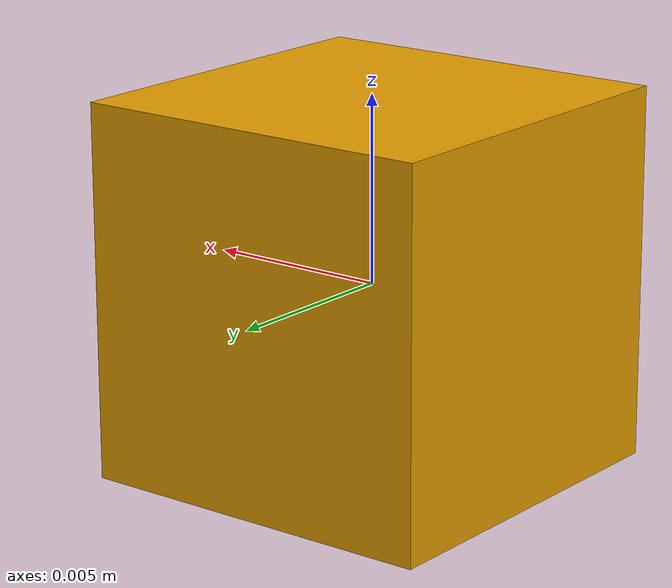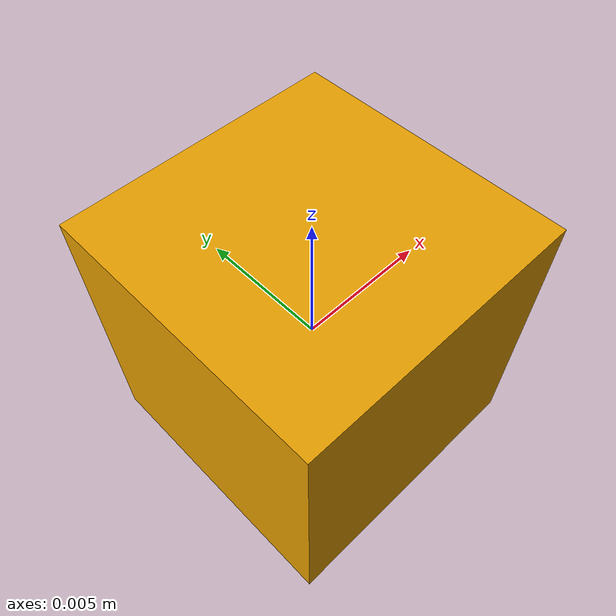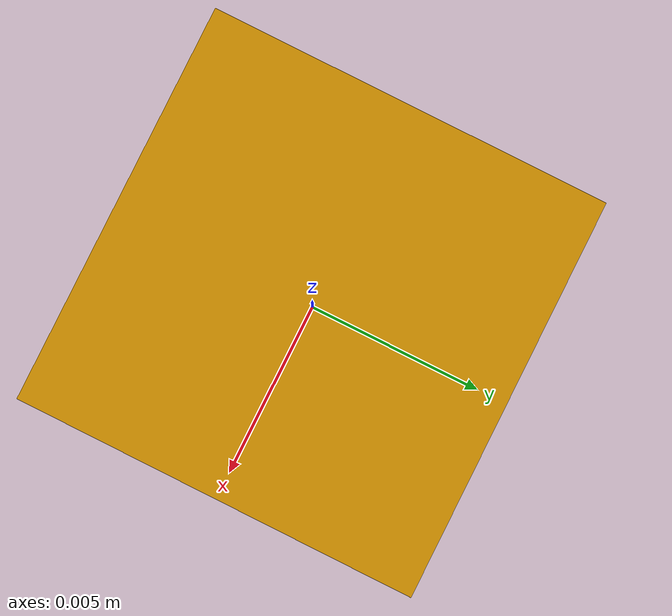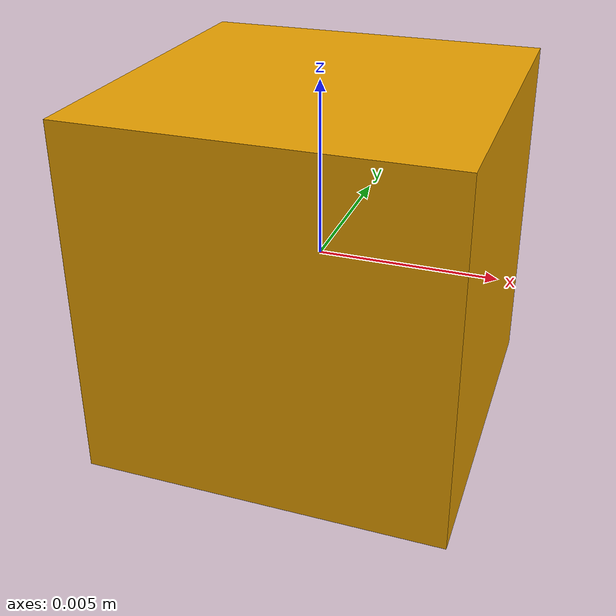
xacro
<?xml version="1.0"?>

<robot name="test_robot" xmlns:xacro="http://ros.org/wiki/xacro">
  <link name="base_link">
    <inertial>
      <mass value="1" />
      <origin xyz="0 0 0" />
      <inertia ixx="1" ixy="0.0" ixz="0.0" iyy="1" iyz="0.0" izz="1" />
    </inertial>

    <visual>
      <origin xyz="0 0 0" rpy="0 0 0" />
      <geometry>
        <box size="0.01 0.01 0.01"/>
      </geometry>
    </visual>

    <collision>
      <origin xyz="0 0 0" rpy="0 0 0" />
      <geometry>
        <box size="0.01 0.01 0.01" />
      </geometry>
    </collision>
  </link>

  <gazebo>
    <plugin filename="libtest_gazebo_plugin.so" name="test_gazebo_plugin1">
      <number>1</number>
    </plugin>
    <plugin filename="libtest_gazebo_plugin.so" name="test_gazebo_plugin2">
      <number>2</number>
    </plugin>
    <plugin filename="libtest_gazebo_plugin.so" name="test_gazebo_plugin3">
      <number>3</number>
    </plugin>
    <plugin filename="libtest_gazebo_plugin.so" name="test_gazebo_plugin4">
      <number>4</number>
    </plugin>
    <plugin filename="libtest_gazebo_plugin.so" name="test_gazebo_plugin5">
      <number>5</number>
    </plugin>
    <plugin filename="libtest_gazebo_plugin.so" name="test_gazebo_plugin6">
      <number>6</number>
    </plugin>
    <plugin filename="libtest_gazebo_plugin.so" name="test_gazebo_plugin7">
      <number>7</number>
    </plugin>
    <plugin filename="libtest_gazebo_plugin.so" name="test_gazebo_plugin8">
      <number>8</number>
    </plugin>
    <plugin filename="libtest_gazebo_plugin.so" name="test_gazebo_plugin9">
      <number>9</number>
    </plugin>
    <plugin filename="libtest_gazebo_plugin.so" name="test_gazebo_plugin10">
      <number>10</number>
    </plugin>
    <plugin filename="libtest_gazebo_plugin.so" name="test_gazebo_plugin11">
      <number>11</number>
    </plugin>
    <plugin filename="libtest_gazebo_plugin.so" name="test_gazebo_plugin12">
      <number>12</number>
    </plugin>
    <plugin filename="libtest_gazebo_plugin.so" name="test_gazebo_plugin13">
      <number>13</number>
    </plugin>
    <plugin filename="libtest_gazebo_plugin.so" name="test_gazebo_plugin14">
      <number>14</number>
    </plugin>
    <plugin filename="libtest_gazebo_plugin.so" name="test_gazebo_plugin15">
      <number>15</number>
    </plugin>
    <plugin filename="libtest_gazebo_plugin.so" name="test_gazebo_plugin16">
      <number>16</number>
    </plugin>
    <plugin filename="libtest_gazebo_plugin.so" name="test_gazebo_plugin17">
      <number>17</number>
    </plugin>
    <plugin filename="libtest_gazebo_plugin.so" name="test_gazebo_plugin18">
      <number>18</number>
    </plugin>
    <plugin filename="libtest_gazebo_plugin.so" name="test_gazebo_plugin19">
      <number>19</number>
    </plugin>
    <plugin filename="libtest_gazebo_plugin.so" name="test_gazebo_plugin20">
      <number>20</number>
    </plugin>
    <plugin filename="libtest_gazebo_plugin.so" name="test_gazebo_plugin21">
      <number>21</number>
    </plugin>
    <plugin filename="libtest_gazebo_plugin.so" name="test_gazebo_plugin22">
      <number>22</number>
    </plugin>
    <plugin filename="libtest_gazebo_plugin.so" name="test_gazebo_plugin23">
      <number>23</number>
    </plugin>
    <plugin filename="libtest_gazebo_plugin.so" name="test_gazebo_plugin24">
      <number>24</number>
    </plugin>
    <plugin filename="libtest_gazebo_plugin.so" name="test_gazebo_plugin25">
      <number>25</number>
    </plugin>
    <plugin filename="libtest_gazebo_plugin.so" name="test_gazebo_plugin26">
      <number>26</number>
    </plugin>
    <plugin filename="libtest_gazebo_plugin.so" name="test_gazebo_plugin27">
      <number>27</number>
    </plugin>
    <plugin filename="libtest_gazebo_plugin.so" name="test_gazebo_plugin28">
      <number>28</number>
    </plugin>
    <plugin filename="libtest_gazebo_plugin.so" name="test_gazebo_plugin29">
      <number>29</number>
    </plugin>
    <plugin filename="libtest_gazebo_plugin.so" name="test_gazebo_plugin30">
      <number>30</number>
    </plugin>
    <plugin filename="libtest_gazebo_plugin.so" name="test_gazebo_plugin31">
      <number>31</number>
    </plugin>
    <plugin filename="libtest_gazebo_plugin.so" name="test_gazebo_plugin32">
      <number>32</number>
    </plugin>
    <plugin filename="libtest_gazebo_plugin.so" name="test_gazebo_plugin33">
      <number>33</number>
    </plugin>
    <plugin filename="libtest_gazebo_plugin.so" name="test_gazebo_plugin34">
      <number>34</number>
    </plugin>
    <plugin filename="libtest_gazebo_plugin.so" name="test_gazebo_plugin35">
      <number>35</number>
    </plugin>
    <plugin filename="libtest_gazebo_plugin.so" name="test_gazebo_plugin36">
      <number>36</number>
    </plugin>
    <plugin filename="libtest_gazebo_plugin.so" name="test_gazebo_plugin37">
      <number>37</number>
    </plugin>
    <plugin filename="libtest_gazebo_plugin.so" name="test_gazebo_plugin38">
      <number>38</number>
    </plugin>
    <plugin filename="libtest_gazebo_plugin.so" name="test_gazebo_plugin39">
      <number>39</number>
    </plugin>
    <plugin filename="libtest_gazebo_plugin.so" name="test_gazebo_plugin40">
      <number>40</number>
    </plugin>
    <plugin filename="libtest_gazebo_plugin.so" name="test_gazebo_plugin41">
      <number>41</number>
    </plugin>
    <plugin filename="libtest_gazebo_plugin.so" name="test_gazebo_plugin42">
      <number>42</number>
    </plugin>
    <plugin filename="libtest_gazebo_plugin.so" name="test_gazebo_plugin43">
      <number>43</number>
    </plugin>
    <plugin filename="libtest_gazebo_plugin.so" name="test_gazebo_plugin44">
      <number>44</number>
    </plugin>
    <plugin filename="libtest_gazebo_plugin.so" name="test_gazebo_plugin45">
      <number>45</number>
    </plugin>
    <plugin filename="libtest_gazebo_plugin.so" name="test_gazebo_plugin46">
      <number>46</number>
    </plugin>
    <plugin filename="libtest_gazebo_plugin.so" name="test_gazebo_plugin47">
      <number>47</number>
    </plugin>
    <plugin filename="libtest_gazebo_plugin.so" name="test_gazebo_plugin48">
      <number>48</number>
    </plugin>
    <plugin filename="libtest_gazebo_plugin.so" name="test_gazebo_plugin49">
      <number>49</number>
    </plugin>
    <plugin filename="libtest_gazebo_plugin.so" name="test_gazebo_plugin50">
      <number>50</number>
    </plugin>
    <plugin filename="libtest_gazebo_plugin.so" name="test_gazebo_plugin51">
      <number>51</number>
    </plugin>
    <plugin filename="libtest_gazebo_plugin.so" name="test_gazebo_plugin52">
      <number>52</number>
    </plugin>
    <plugin filename="libtest_gazebo_plugin.so" name="test_gazebo_plugin53">
      <number>53</number>
    </plugin>
    <plugin filename="libtest_gazebo_plugin.so" name="test_gazebo_plugin54">
      <number>54</number>
    </plugin>
    <plugin filename="libtest_gazebo_plugin.so" name="test_gazebo_plugin55">
      <number>55</number>
    </plugin>
    <plugin filename="libtest_gazebo_plugin.so" name="test_gazebo_plugin56">
      <number>56</number>
    </plugin>
    <plugin filename="libtest_gazebo_plugin.so" name="test_gazebo_plugin57">
      <number>57</number>
    </plugin>
    <plugin filename="libtest_gazebo_plugin.so" name="test_gazebo_plugin58">
      <number>58</number>
    </plugin>
    <plugin filename="libtest_gazebo_plugin.so" name="test_gazebo_plugin59">
      <number>59</number>
    </plugin>
    <plugin filename="libtest_gazebo_plugin.so" name="test_gazebo_plugin60">
      <number>60</number>
    </plugin>
    <plugin filename="libtest_gazebo_plugin.so" name="test_gazebo_plugin61">
      <number>61</number>
    </plugin>
    <plugin filename="libtest_gazebo_plugin.so" name="test_gazebo_plugin62">
      <number>62</number>
    </plugin>
    <plugin filename="libtest_gazebo_plugin.so" name="test_gazebo_plugin63">
      <number>63</number>
    </plugin>
    <plugin filename="libtest_gazebo_plugin.so" name="test_gazebo_plugin64">
      <number>64</number>
    </plugin>
    <plugin filename="libtest_gazebo_plugin.so" name="test_gazebo_plugin65">
      <number>65</number>
    </plugin>
    <plugin filename="libtest_gazebo_plugin.so" name="test_gazebo_plugin66">
      <number>66</number>
    </plugin>
    <plugin filename="libtest_gazebo_plugin.so" name="test_gazebo_plugin67">
      <number>67</number>
    </plugin>
    <plugin filename="libtest_gazebo_plugin.so" name="test_gazebo_plugin68">
      <number>68</number>
    </plugin>
    <plugin filename="libtest_gazebo_plugin.so" name="test_gazebo_plugin69">
      <number>69</number>
    </plugin>
    <plugin filename="libtest_gazebo_plugin.so" name="test_gazebo_plugin70">
      <number>70</number>
    </plugin>
    <plugin filename="libtest_gazebo_plugin.so" name="test_gazebo_plugin71">
      <number>71</number>
    </plugin>
    <plugin filename="libtest_gazebo_plugin.so" name="test_gazebo_plugin72">
      <number>72</number>
    </plugin>
    <plugin filename="libtest_gazebo_plugin.so" name="test_gazebo_plugin73">
      <number>73</number>
    </plugin>
    <plugin filename="libtest_gazebo_plugin.so" name="test_gazebo_plugin74">
      <number>74</number>
    </plugin>
    <plugin filename="libtest_gazebo_plugin.so" name="test_gazebo_plugin75">
      <number>75</number>
    </plugin>
    <plugin filename="libtest_gazebo_plugin.so" name="test_gazebo_plugin76">
      <number>76</number>
    </plugin>
    <plugin filename="libtest_gazebo_plugin.so" name="test_gazebo_plugin77">
      <number>77</number>
    </plugin>
    <plugin filename="libtest_gazebo_plugin.so" name="test_gazebo_plugin78">
      <number>78</number>
    </plugin>
    <plugin filename="libtest_gazebo_plugin.so" name="test_gazebo_plugin79">
      <number>79</number>
    </plugin>
    <plugin filename="libtest_gazebo_plugin.so" name="test_gazebo_plugin80">
      <number>80</number>
    </plugin>
    <plugin filename="libtest_gazebo_plugin.so" name="test_gazebo_plugin81">
      <number>81</number>
    </plugin>
    <plugin filename="libtest_gazebo_plugin.so" name="test_gazebo_plugin82">
      <number>82</number>
    </plugin>
    <plugin filename="libtest_gazebo_plugin.so" name="test_gazebo_plugin83">
      <number>83</number>
    </plugin>
    <plugin filename="libtest_gazebo_plugin.so" name="test_gazebo_plugin84">
      <number>84</number>
    </plugin>
    <plugin filename="libtest_gazebo_plugin.so" name="test_gazebo_plugin85">
      <number>85</number>
    </plugin>
    <plugin filename="libtest_gazebo_plugin.so" name="test_gazebo_plugin86">
      <number>86</number>
    </plugin>
    <plugin filename="libtest_gazebo_plugin.so" name="test_gazebo_plugin87">
      <number>87</number>
    </plugin>
    <plugin filename="libtest_gazebo_plugin.so" name="test_gazebo_plugin88">
      <number>88</number>
    </plugin>
    <plugin filename="libtest_gazebo_plugin.so" name="test_gazebo_plugin89">
      <number>89</number>
    </plugin>
    <plugin filename="libtest_gazebo_plugin.so" name="test_gazebo_plugin90">
      <number>90</number>
    </plugin>
  </gazebo>
</robot>
